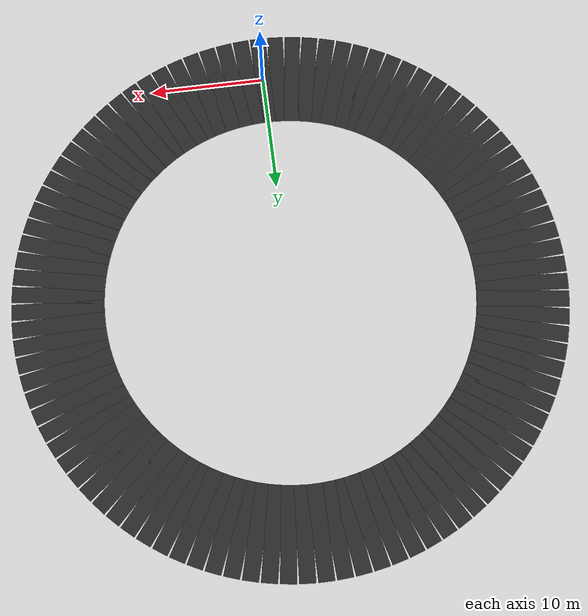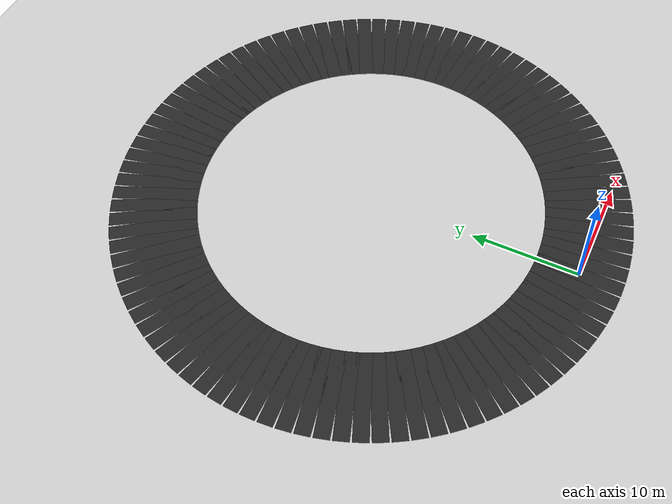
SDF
<sdf version="1.6">
 <world name="lane_world">
  <include><uri>model://sun</uri></include>
  <include><uri>model://ground_plane</uri></include>
  <model name="closed_loop_road">
   <static>true</static>
   <link name="road_link">
    <collision name="road_collision_0">
     <pose>0.000000 0.000000 0.01 0 0 0.000000</pose>
     <geometry><box><size>1.388763 8.00 0.02</size></box></geometry>
    </collision>
    <visual name="road_visual_0">
     <pose>0.000000 0.000000 0.01 0 0 0.000000</pose>
     <geometry><box><size>1.388763 8.00 0.02</size></box></geometry>
     <material><ambient>0.15 0.15 0.15 1</ambient><diffuse>0.15 0.15 0.15 1</diffuse></material>
    </visual>
    <collision name="road_collision_1">
     <pose>1.308063 0.042822 0.01 0 0 0.065450</pose>
     <geometry><box><size>1.388763 8.00 0.02</size></box></geometry>
    </collision>
    <visual name="road_visual_1">
     <pose>1.308063 0.042822 0.01 0 0 0.065450</pose>
     <geometry><box><size>1.388763 8.00 0.02</size></box></geometry>
     <material><ambient>0.15 0.15 0.15 1</ambient><diffuse>0.15 0.15 0.15 1</diffuse></material>
    </visual>
    <collision name="road_collision_2">
     <pose>2.610524 0.171103 0.01 0 0 0.130900</pose>
     <geometry><box><size>1.388763 8.00 0.02</size></box></geometry>
    </collision>
    <visual name="road_visual_2">
     <pose>2.610524 0.171103 0.01 0 0 0.130900</pose>
     <geometry><box><size>1.388763 8.00 0.02</size></box></geometry>
     <material><ambient>0.15 0.15 0.15 1</ambient><diffuse>0.15 0.15 0.15 1</diffuse></material>
    </visual>
    <collision name="road_collision_3">
     <pose>3.901806 0.384294 0.01 0 0 0.196350</pose>
     <geometry><box><size>1.388763 8.00 0.02</size></box></geometry>
    </collision>
    <visual name="road_visual_3">
     <pose>3.901806 0.384294 0.01 0 0 0.196350</pose>
     <geometry><box><size>1.388763 8.00 0.02</size></box></geometry>
     <material><ambient>0.15 0.15 0.15 1</ambient><diffuse>0.15 0.15 0.15 1</diffuse></material>
    </visual>
    <collision name="road_collision_4">
     <pose>5.176381 0.681483 0.01 0 0 0.261799</pose>
     <geometry><box><size>1.388763 8.00 0.02</size></box></geometry>
    </collision>
    <visual name="road_visual_4">
     <pose>5.176381 0.681483 0.01 0 0 0.261799</pose>
     <geometry><box><size>1.388763 8.00 0.02</size></box></geometry>
     <material><ambient>0.15 0.15 0.15 1</ambient><diffuse>0.15 0.15 0.15 1</diffuse></material>
    </visual>
    <collision name="road_collision_5">
     <pose>6.428789 1.061397 0.01 0 0 0.327249</pose>
     <geometry><box><size>1.388763 8.00 0.02</size></box></geometry>
    </collision>
    <visual name="road_visual_5">
     <pose>6.428789 1.061397 0.01 0 0 0.327249</pose>
     <geometry><box><size>1.388763 8.00 0.02</size></box></geometry>
     <material><ambient>0.15 0.15 0.15 1</ambient><diffuse>0.15 0.15 0.15 1</diffuse></material>
    </visual>
    <collision name="road_collision_6">
     <pose>7.653669 1.522409 0.01 0 0 0.392699</pose>
     <geometry><box><size>1.388763 8.00 0.02</size></box></geometry>
    </collision>
    <visual name="road_visual_6">
     <pose>7.653669 1.522409 0.01 0 0 0.392699</pose>
     <geometry><box><size>1.388763 8.00 0.02</size></box></geometry>
     <material><ambient>0.15 0.15 0.15 1</ambient><diffuse>0.15 0.15 0.15 1</diffuse></material>
    </visual>
    <collision name="road_collision_7">
     <pose>8.845774 2.062545 0.01 0 0 0.458149</pose>
     <geometry><box><size>1.388763 8.00 0.02</size></box></geometry>
    </collision>
    <visual name="road_visual_7">
     <pose>8.845774 2.062545 0.01 0 0 0.458149</pose>
     <geometry><box><size>1.388763 8.00 0.02</size></box></geometry>
     <material><ambient>0.15 0.15 0.15 1</ambient><diffuse>0.15 0.15 0.15 1</diffuse></material>
    </visual>
    <collision name="road_collision_8">
     <pose>10.000000 2.679492 0.01 0 0 0.523599</pose>
     <geometry><box><size>1.388763 8.00 0.02</size></box></geometry>
    </collision>
    <visual name="road_visual_8">
     <pose>10.000000 2.679492 0.01 0 0 0.523599</pose>
     <geometry><box><size>1.388763 8.00 0.02</size></box></geometry>
     <material><ambient>0.15 0.15 0.15 1</ambient><diffuse>0.15 0.15 0.15 1</diffuse></material>
    </visual>
    <collision name="road_collision_9">
     <pose>11.111405 3.370608 0.01 0 0 0.589049</pose>
     <geometry><box><size>1.388763 8.00 0.02</size></box></geometry>
    </collision>
    <visual name="road_visual_9">
     <pose>11.111405 3.370608 0.01 0 0 0.589049</pose>
     <geometry><box><size>1.388763 8.00 0.02</size></box></geometry>
     <material><ambient>0.15 0.15 0.15 1</ambient><diffuse>0.15 0.15 0.15 1</diffuse></material>
    </visual>
    <collision name="road_collision_10">
     <pose>12.175229 4.132933 0.01 0 0 0.654498</pose>
     <geometry><box><size>1.388763 8.00 0.02</size></box></geometry>
    </collision>
    <visual name="road_visual_10">
     <pose>12.175229 4.132933 0.01 0 0 0.654498</pose>
     <geometry><box><size>1.388763 8.00 0.02</size></box></geometry>
     <material><ambient>0.15 0.15 0.15 1</ambient><diffuse>0.15 0.15 0.15 1</diffuse></material>
    </visual>
    <collision name="road_collision_11">
     <pose>13.186916 4.963204 0.01 0 0 0.719948</pose>
     <geometry><box><size>1.388763 8.00 0.02</size></box></geometry>
    </collision>
    <visual name="road_visual_11">
     <pose>13.186916 4.963204 0.01 0 0 0.719948</pose>
     <geometry><box><size>1.388763 8.00 0.02</size></box></geometry>
     <material><ambient>0.15 0.15 0.15 1</ambient><diffuse>0.15 0.15 0.15 1</diffuse></material>
    </visual>
    <collision name="road_collision_12">
     <pose>14.142136 5.857864 0.01 0 0 0.785398</pose>
     <geometry><box><size>1.388763 8.00 0.02</size></box></geometry>
    </collision>
    <visual name="road_visual_12">
     <pose>14.142136 5.857864 0.01 0 0 0.785398</pose>
     <geometry><box><size>1.388763 8.00 0.02</size></box></geometry>
     <material><ambient>0.15 0.15 0.15 1</ambient><diffuse>0.15 0.15 0.15 1</diffuse></material>
    </visual>
    <collision name="road_collision_13">
     <pose>15.036796 6.813084 0.01 0 0 0.850848</pose>
     <geometry><box><size>1.388763 8.00 0.02</size></box></geometry>
    </collision>
    <visual name="road_visual_13">
     <pose>15.036796 6.813084 0.01 0 0 0.850848</pose>
     <geometry><box><size>1.388763 8.00 0.02</size></box></geometry>
     <material><ambient>0.15 0.15 0.15 1</ambient><diffuse>0.15 0.15 0.15 1</diffuse></material>
    </visual>
    <collision name="road_collision_14">
     <pose>15.867067 7.824771 0.01 0 0 0.916298</pose>
     <geometry><box><size>1.388763 8.00 0.02</size></box></geometry>
    </collision>
    <visual name="road_visual_14">
     <pose>15.867067 7.824771 0.01 0 0 0.916298</pose>
     <geometry><box><size>1.388763 8.00 0.02</size></box></geometry>
     <material><ambient>0.15 0.15 0.15 1</ambient><diffuse>0.15 0.15 0.15 1</diffuse></material>
    </visual>
    <collision name="road_collision_15">
     <pose>16.629392 8.888595 0.01 0 0 0.981748</pose>
     <geometry><box><size>1.388763 8.00 0.02</size></box></geometry>
    </collision>
    <visual name="road_visual_15">
     <pose>16.629392 8.888595 0.01 0 0 0.981748</pose>
     <geometry><box><size>1.388763 8.00 0.02</size></box></geometry>
     <material><ambient>0.15 0.15 0.15 1</ambient><diffuse>0.15 0.15 0.15 1</diffuse></material>
    </visual>
    <collision name="road_collision_16">
     <pose>17.320508 10.000000 0.01 0 0 1.047198</pose>
     <geometry><box><size>1.388763 8.00 0.02</size></box></geometry>
    </collision>
    <visual name="road_visual_16">
     <pose>17.320508 10.000000 0.01 0 0 1.047198</pose>
     <geometry><box><size>1.388763 8.00 0.02</size></box></geometry>
     <material><ambient>0.15 0.15 0.15 1</ambient><diffuse>0.15 0.15 0.15 1</diffuse></material>
    </visual>
    <collision name="road_collision_17">
     <pose>17.937455 11.154226 0.01 0 0 1.112647</pose>
     <geometry><box><size>1.388763 8.00 0.02</size></box></geometry>
    </collision>
    <visual name="road_visual_17">
     <pose>17.937455 11.154226 0.01 0 0 1.112647</pose>
     <geometry><box><size>1.388763 8.00 0.02</size></box></geometry>
     <material><ambient>0.15 0.15 0.15 1</ambient><diffuse>0.15 0.15 0.15 1</diffuse></material>
    </visual>
    <collision name="road_collision_18">
     <pose>18.477591 12.346331 0.01 0 0 1.178097</pose>
     <geometry><box><size>1.388763 8.00 0.02</size></box></geometry>
    </collision>
    <visual name="road_visual_18">
     <pose>18.477591 12.346331 0.01 0 0 1.178097</pose>
     <geometry><box><size>1.388763 8.00 0.02</size></box></geometry>
     <material><ambient>0.15 0.15 0.15 1</ambient><diffuse>0.15 0.15 0.15 1</diffuse></material>
    </visual>
    <collision name="road_collision_19">
     <pose>18.938603 13.571211 0.01 0 0 1.243547</pose>
     <geometry><box><size>1.388763 8.00 0.02</size></box></geometry>
    </collision>
    <visual name="road_visual_19">
     <pose>18.938603 13.571211 0.01 0 0 1.243547</pose>
     <geometry><box><size>1.388763 8.00 0.02</size></box></geometry>
     <material><ambient>0.15 0.15 0.15 1</ambient><diffuse>0.15 0.15 0.15 1</diffuse></material>
    </visual>
    <collision name="road_collision_20">
     <pose>19.318517 14.823619 0.01 0 0 1.308997</pose>
     <geometry><box><size>1.388763 8.00 0.02</size></box></geometry>
    </collision>
    <visual name="road_visual_20">
     <pose>19.318517 14.823619 0.01 0 0 1.308997</pose>
     <geometry><box><size>1.388763 8.00 0.02</size></box></geometry>
     <material><ambient>0.15 0.15 0.15 1</ambient><diffuse>0.15 0.15 0.15 1</diffuse></material>
    </visual>
    <collision name="road_collision_21">
     <pose>19.615706 16.098194 0.01 0 0 1.374447</pose>
     <geometry><box><size>1.388763 8.00 0.02</size></box></geometry>
    </collision>
    <visual name="road_visual_21">
     <pose>19.615706 16.098194 0.01 0 0 1.374447</pose>
     <geometry><box><size>1.388763 8.00 0.02</size></box></geometry>
     <material><ambient>0.15 0.15 0.15 1</ambient><diffuse>0.15 0.15 0.15 1</diffuse></material>
    </visual>
    <collision name="road_collision_22">
     <pose>19.828897 17.389476 0.01 0 0 1.439897</pose>
     <geometry><box><size>1.388763 8.00 0.02</size></box></geometry>
    </collision>
    <visual name="road_visual_22">
     <pose>19.828897 17.389476 0.01 0 0 1.439897</pose>
     <geometry><box><size>1.388763 8.00 0.02</size></box></geometry>
     <material><ambient>0.15 0.15 0.15 1</ambient><diffuse>0.15 0.15 0.15 1</diffuse></material>
    </visual>
    <collision name="road_collision_23">
     <pose>19.957178 18.691937 0.01 0 0 1.505346</pose>
     <geometry><box><size>1.388763 8.00 0.02</size></box></geometry>
    </collision>
    <visual name="road_visual_23">
     <pose>19.957178 18.691937 0.01 0 0 1.505346</pose>
     <geometry><box><size>1.388763 8.00 0.02</size></box></geometry>
     <material><ambient>0.15 0.15 0.15 1</ambient><diffuse>0.15 0.15 0.15 1</diffuse></material>
    </visual>
    <collision name="road_collision_24">
     <pose>20.000000 20.000000 0.01 0 0 1.570796</pose>
     <geometry><box><size>1.388763 8.00 0.02</size></box></geometry>
    </collision>
    <visual name="road_visual_24">
     <pose>20.000000 20.000000 0.01 0 0 1.570796</pose>
     <geometry><box><size>1.388763 8.00 0.02</size></box></geometry>
     <material><ambient>0.15 0.15 0.15 1</ambient><diffuse>0.15 0.15 0.15 1</diffuse></material>
    </visual>
    <collision name="road_collision_25">
     <pose>19.957178 21.308063 0.01 0 0 1.636246</pose>
     <geometry><box><size>1.388763 8.00 0.02</size></box></geometry>
    </collision>
    <visual name="road_visual_25">
     <pose>19.957178 21.308063 0.01 0 0 1.636246</pose>
     <geometry><box><size>1.388763 8.00 0.02</size></box></geometry>
     <material><ambient>0.15 0.15 0.15 1</ambient><diffuse>0.15 0.15 0.15 1</diffuse></material>
    </visual>
    <collision name="road_collision_26">
     <pose>19.828897 22.610524 0.01 0 0 1.701696</pose>
     <geometry><box><size>1.388763 8.00 0.02</size></box></geometry>
    </collision>
    <visual name="road_visual_26">
     <pose>19.828897 22.610524 0.01 0 0 1.701696</pose>
     <geometry><box><size>1.388763 8.00 0.02</size></box></geometry>
     <material><ambient>0.15 0.15 0.15 1</ambient><diffuse>0.15 0.15 0.15 1</diffuse></material>
    </visual>
    <collision name="road_collision_27">
     <pose>19.615706 23.901806 0.01 0 0 1.767146</pose>
     <geometry><box><size>1.388763 8.00 0.02</size></box></geometry>
    </collision>
    <visual name="road_visual_27">
     <pose>19.615706 23.901806 0.01 0 0 1.767146</pose>
     <geometry><box><size>1.388763 8.00 0.02</size></box></geometry>
     <material><ambient>0.15 0.15 0.15 1</ambient><diffuse>0.15 0.15 0.15 1</diffuse></material>
    </visual>
    <collision name="road_collision_28">
     <pose>19.318517 25.176381 0.01 0 0 1.832596</pose>
     <geometry><box><size>1.388763 8.00 0.02</size></box></geometry>
    </collision>
    <visual name="road_visual_28">
     <pose>19.318517 25.176381 0.01 0 0 1.832596</pose>
     <geometry><box><size>1.388763 8.00 0.02</size></box></geometry>
     <material><ambient>0.15 0.15 0.15 1</ambient><diffuse>0.15 0.15 0.15 1</diffuse></material>
    </visual>
    <collision name="road_collision_29">
     <pose>18.938603 26.428789 0.01 0 0 1.898046</pose>
     <geometry><box><size>1.388763 8.00 0.02</size></box></geometry>
    </collision>
    <visual name="road_visual_29">
     <pose>18.938603 26.428789 0.01 0 0 1.898046</pose>
     <geometry><box><size>1.388763 8.00 0.02</size></box></geometry>
     <material><ambient>0.15 0.15 0.15 1</ambient><diffuse>0.15 0.15 0.15 1</diffuse></material>
    </visual>
    <collision name="road_collision_30">
     <pose>18.477591 27.653669 0.01 0 0 1.963495</pose>
     <geometry><box><size>1.388763 8.00 0.02</size></box></geometry>
    </collision>
    <visual name="road_visual_30">
     <pose>18.477591 27.653669 0.01 0 0 1.963495</pose>
     <geometry><box><size>1.388763 8.00 0.02</size></box></geometry>
     <material><ambient>0.15 0.15 0.15 1</ambient><diffuse>0.15 0.15 0.15 1</diffuse></material>
    </visual>
    <collision name="road_collision_31">
     <pose>17.937455 28.845774 0.01 0 0 2.028945</pose>
     <geometry><box><size>1.388763 8.00 0.02</size></box></geometry>
    </collision>
    <visual name="road_visual_31">
     <pose>17.937455 28.845774 0.01 0 0 2.028945</pose>
     <geometry><box><size>1.388763 8.00 0.02</size></box></geometry>
     <material><ambient>0.15 0.15 0.15 1</ambient><diffuse>0.15 0.15 0.15 1</diffuse></material>
    </visual>
    <collision name="road_collision_32">
     <pose>17.320508 30.000000 0.01 0 0 2.094395</pose>
     <geometry><box><size>1.388763 8.00 0.02</size></box></geometry>
    </collision>
    <visual name="road_visual_32">
     <pose>17.320508 30.000000 0.01 0 0 2.094395</pose>
     <geometry><box><size>1.388763 8.00 0.02</size></box></geometry>
     <material><ambient>0.15 0.15 0.15 1</ambient><diffuse>0.15 0.15 0.15 1</diffuse></material>
    </visual>
    <collision name="road_collision_33">
     <pose>16.629392 31.111405 0.01 0 0 2.159845</pose>
     <geometry><box><size>1.388763 8.00 0.02</size></box></geometry>
    </collision>
    <visual name="road_visual_33">
     <pose>16.629392 31.111405 0.01 0 0 2.159845</pose>
     <geometry><box><size>1.388763 8.00 0.02</size></box></geometry>
     <material><ambient>0.15 0.15 0.15 1</ambient><diffuse>0.15 0.15 0.15 1</diffuse></material>
    </visual>
    <collision name="road_collision_34">
     <pose>15.867067 32.175229 0.01 0 0 2.225295</pose>
     <geometry><box><size>1.388763 8.00 0.02</size></box></geometry>
    </collision>
    <visual name="road_visual_34">
     <pose>15.867067 32.175229 0.01 0 0 2.225295</pose>
     <geometry><box><size>1.388763 8.00 0.02</size></box></geometry>
     <material><ambient>0.15 0.15 0.15 1</ambient><diffuse>0.15 0.15 0.15 1</diffuse></material>
    </visual>
    <collision name="road_collision_35">
     <pose>15.036796 33.186916 0.01 0 0 2.290745</pose>
     <geometry><box><size>1.388763 8.00 0.02</size></box></geometry>
    </collision>
    <visual name="road_visual_35">
     <pose>15.036796 33.186916 0.01 0 0 2.290745</pose>
     <geometry><box><size>1.388763 8.00 0.02</size></box></geometry>
     <material><ambient>0.15 0.15 0.15 1</ambient><diffuse>0.15 0.15 0.15 1</diffuse></material>
    </visual>
    <collision name="road_collision_36">
     <pose>14.142136 34.142136 0.01 0 0 2.356194</pose>
     <geometry><box><size>1.388763 8.00 0.02</size></box></geometry>
    </collision>
    <visual name="road_visual_36">
     <pose>14.142136 34.142136 0.01 0 0 2.356194</pose>
     <geometry><box><size>1.388763 8.00 0.02</size></box></geometry>
     <material><ambient>0.15 0.15 0.15 1</ambient><diffuse>0.15 0.15 0.15 1</diffuse></material>
    </visual>
    <collision name="road_collision_37">
     <pose>13.186916 35.036796 0.01 0 0 2.421644</pose>
     <geometry><box><size>1.388763 8.00 0.02</size></box></geometry>
    </collision>
    <visual name="road_visual_37">
     <pose>13.186916 35.036796 0.01 0 0 2.421644</pose>
     <geometry><box><size>1.388763 8.00 0.02</size></box></geometry>
     <material><ambient>0.15 0.15 0.15 1</ambient><diffuse>0.15 0.15 0.15 1</diffuse></material>
    </visual>
    <collision name="road_collision_38">
     <pose>12.175229 35.867067 0.01 0 0 2.487094</pose>
     <geometry><box><size>1.388763 8.00 0.02</size></box></geometry>
    </collision>
    <visual name="road_visual_38">
     <pose>12.175229 35.867067 0.01 0 0 2.487094</pose>
     <geometry><box><size>1.388763 8.00 0.02</size></box></geometry>
     <material><ambient>0.15 0.15 0.15 1</ambient><diffuse>0.15 0.15 0.15 1</diffuse></material>
    </visual>
    <collision name="road_collision_39">
     <pose>11.111405 36.629392 0.01 0 0 2.552544</pose>
     <geometry><box><size>1.388763 8.00 0.02</size></box></geometry>
    </collision>
    <visual name="road_visual_39">
     <pose>11.111405 36.629392 0.01 0 0 2.552544</pose>
     <geometry><box><size>1.388763 8.00 0.02</size></box></geometry>
     <material><ambient>0.15 0.15 0.15 1</ambient><diffuse>0.15 0.15 0.15 1</diffuse></material>
    </visual>
    <collision name="road_collision_40">
     <pose>10.000000 37.320508 0.01 0 0 2.617994</pose>
     <geometry><box><size>1.388763 8.00 0.02</size></box></geometry>
    </collision>
    <visual name="road_visual_40">
     <pose>10.000000 37.320508 0.01 0 0 2.617994</pose>
     <geometry><box><size>1.388763 8.00 0.02</size></box></geometry>
     <material><ambient>0.15 0.15 0.15 1</ambient><diffuse>0.15 0.15 0.15 1</diffuse></material>
    </visual>
    <collision name="road_collision_41">
     <pose>8.845774 37.937455 0.01 0 0 2.683444</pose>
     <geometry><box><size>1.388763 8.00 0.02</size></box></geometry>
    </collision>
    <visual name="road_visual_41">
     <pose>8.845774 37.937455 0.01 0 0 2.683444</pose>
     <geometry><box><size>1.388763 8.00 0.02</size></box></geometry>
     <material><ambient>0.15 0.15 0.15 1</ambient><diffuse>0.15 0.15 0.15 1</diffuse></material>
    </visual>
    <collision name="road_collision_42">
     <pose>7.653669 38.477591 0.01 0 0 2.748894</pose>
     <geometry><box><size>1.388763 8.00 0.02</size></box></geometry>
    </collision>
    <visual name="road_visual_42">
     <pose>7.653669 38.477591 0.01 0 0 2.748894</pose>
     <geometry><box><size>1.388763 8.00 0.02</size></box></geometry>
     <material><ambient>0.15 0.15 0.15 1</ambient><diffuse>0.15 0.15 0.15 1</diffuse></material>
    </visual>
    <collision name="road_collision_43">
     <pose>6.428789 38.938603 0.01 0 0 2.814343</pose>
     <geometry><box><size>1.388763 8.00 0.02</size></box></geometry>
    </collision>
    <visual name="road_visual_43">
     <pose>6.428789 38.938603 0.01 0 0 2.814343</pose>
     <geometry><box><size>1.388763 8.00 0.02</size></box></geometry>
     <material><ambient>0.15 0.15 0.15 1</ambient><diffuse>0.15 0.15 0.15 1</diffuse></material>
    </visual>
    <collision name="road_collision_44">
     <pose>5.176381 39.318517 0.01 0 0 2.879793</pose>
     <geometry><box><size>1.388763 8.00 0.02</size></box></geometry>
    </collision>
    <visual name="road_visual_44">
     <pose>5.176381 39.318517 0.01 0 0 2.879793</pose>
     <geometry><box><size>1.388763 8.00 0.02</size></box></geometry>
     <material><ambient>0.15 0.15 0.15 1</ambient><diffuse>0.15 0.15 0.15 1</diffuse></material>
    </visual>
    <collision name="road_collision_45">
     <pose>3.901806 39.615706 0.01 0 0 2.945243</pose>
     <geometry><box><size>1.388763 8.00 0.02</size></box></geometry>
    </collision>
    <visual name="road_visual_45">
     <pose>3.901806 39.615706 0.01 0 0 2.945243</pose>
     <geometry><box><size>1.388763 8.00 0.02</size></box></geometry>
     <material><ambient>0.15 0.15 0.15 1</ambient><diffuse>0.15 0.15 0.15 1</diffuse></material>
    </visual>
    <collision name="road_collision_46">
     <pose>2.610524 39.828897 0.01 0 0 3.010693</pose>
     <geometry><box><size>1.388763 8.00 0.02</size></box></geometry>
    </collision>
    <visual name="road_visual_46">
     <pose>2.610524 39.828897 0.01 0 0 3.010693</pose>
     <geometry><box><size>1.388763 8.00 0.02</size></box></geometry>
     <material><ambient>0.15 0.15 0.15 1</ambient><diffuse>0.15 0.15 0.15 1</diffuse></material>
    </visual>
    <collision name="road_collision_47">
     <pose>1.308063 39.957178 0.01 0 0 3.076143</pose>
     <geometry><box><size>1.388763 8.00 0.02</size></box></geometry>
    </collision>
    <visual name="road_visual_47">
     <pose>1.308063 39.957178 0.01 0 0 3.076143</pose>
     <geometry><box><size>1.388763 8.00 0.02</size></box></geometry>
     <material><ambient>0.15 0.15 0.15 1</ambient><diffuse>0.15 0.15 0.15 1</diffuse></material>
    </visual>
    <collision name="road_collision_48">
     <pose>0.000000 40.000000 0.01 0 0 3.141593</pose>
     <geometry><box><size>1.388763 8.00 0.02</size></box></geometry>
    </collision>
    <visual name="road_visual_48">
     <pose>0.000000 40.000000 0.01 0 0 3.141593</pose>
     <geometry><box><size>1.388763 8.00 0.02</size></box></geometry>
     <material><ambient>0.15 0.15 0.15 1</ambient><diffuse>0.15 0.15 0.15 1</diffuse></material>
    </visual>
    <collision name="road_collision_49">
     <pose>-1.308063 39.957178 0.01 0 0 3.207043</pose>
     <geometry><box><size>1.388763 8.00 0.02</size></box></geometry>
    </collision>
    <visual name="road_visual_49">
     <pose>-1.308063 39.957178 0.01 0 0 3.207043</pose>
     <geometry><box><size>1.388763 8.00 0.02</size></box></geometry>
     <material><ambient>0.15 0.15 0.15 1</ambient><diffuse>0.15 0.15 0.15 1</diffuse></material>
    </visual>
    <collision name="road_collision_50">
     <pose>-2.610524 39.828897 0.01 0 0 3.272492</pose>
     <geometry><box><size>1.388763 8.00 0.02</size></box></geometry>
    </collision>
    <visual name="road_visual_50">
     <pose>-2.610524 39.828897 0.01 0 0 3.272492</pose>
     <geometry><box><size>1.388763 8.00 0.02</size></box></geometry>
     <material><ambient>0.15 0.15 0.15 1</ambient><diffuse>0.15 0.15 0.15 1</diffuse></material>
    </visual>
    <collision name="road_collision_51">
     <pose>-3.901806 39.615706 0.01 0 0 3.337942</pose>
     <geometry><box><size>1.388763 8.00 0.02</size></box></geometry>
    </collision>
    <visual name="road_visual_51">
     <pose>-3.901806 39.615706 0.01 0 0 3.337942</pose>
     <geometry><box><size>1.388763 8.00 0.02</size></box></geometry>
     <material><ambient>0.15 0.15 0.15 1</ambient><diffuse>0.15 0.15 0.15 1</diffuse></material>
    </visual>
    <collision name="road_collision_52">
     <pose>-5.176381 39.318517 0.01 0 0 3.403392</pose>
     <geometry><box><size>1.388763 8.00 0.02</size></box></geometry>
    </collision>
    <visual name="road_visual_52">
     <pose>-5.176381 39.318517 0.01 0 0 3.403392</pose>
     <geometry><box><size>1.388763 8.00 0.02</size></box></geometry>
     <material><ambient>0.15 0.15 0.15 1</ambient><diffuse>0.15 0.15 0.15 1</diffuse></material>
    </visual>
    <collision name="road_collision_53">
     <pose>-6.428789 38.938603 0.01 0 0 3.468842</pose>
     <geometry><box><size>1.388763 8.00 0.02</size></box></geometry>
    </collision>
    <visual name="road_visual_53">
     <pose>-6.428789 38.938603 0.01 0 0 3.468842</pose>
     <geometry><box><size>1.388763 8.00 0.02</size></box></geometry>
     <material><ambient>0.15 0.15 0.15 1</ambient><diffuse>0.15 0.15 0.15 1</diffuse></material>
    </visual>
    <collision name="road_collision_54">
     <pose>-7.653669 38.477591 0.01 0 0 3.534292</pose>
     <geometry><box><size>1.388763 8.00 0.02</size></box></geometry>
    </collision>
    <visual name="road_visual_54">
     <pose>-7.653669 38.477591 0.01 0 0 3.534292</pose>
     <geometry><box><size>1.388763 8.00 0.02</size></box></geometry>
     <material><ambient>0.15 0.15 0.15 1</ambient><diffuse>0.15 0.15 0.15 1</diffuse></material>
    </visual>
    <collision name="road_collision_55">
     <pose>-8.845774 37.937455 0.01 0 0 3.599742</pose>
     <geometry><box><size>1.388763 8.00 0.02</size></box></geometry>
    </collision>
    <visual name="road_visual_55">
     <pose>-8.845774 37.937455 0.01 0 0 3.599742</pose>
     <geometry><box><size>1.388763 8.00 0.02</size></box></geometry>
     <material><ambient>0.15 0.15 0.15 1</ambient><diffuse>0.15 0.15 0.15 1</diffuse></material>
    </visual>
    <collision name="road_collision_56">
     <pose>-10.000000 37.320508 0.01 0 0 3.665191</pose>
     <geometry><box><size>1.388763 8.00 0.02</size></box></geometry>
    </collision>
    <visual name="road_visual_56">
     <pose>-10.000000 37.320508 0.01 0 0 3.665191</pose>
     <geometry><box><size>1.388763 8.00 0.02</size></box></geometry>
     <material><ambient>0.15 0.15 0.15 1</ambient><diffuse>0.15 0.15 0.15 1</diffuse></material>
    </visual>
    <collision name="road_collision_57">
     <pose>-11.111405 36.629392 0.01 0 0 3.730641</pose>
     <geometry><box><size>1.388763 8.00 0.02</size></box></geometry>
    </collision>
    <visual name="road_visual_57">
     <pose>-11.111405 36.629392 0.01 0 0 3.730641</pose>
     <geometry><box><size>1.388763 8.00 0.02</size></box></geometry>
     <material><ambient>0.15 0.15 0.15 1</ambient><diffuse>0.15 0.15 0.15 1</diffuse></material>
    </visual>
    <collision name="road_collision_58">
     <pose>-12.175229 35.867067 0.01 0 0 3.796091</pose>
     <geometry><box><size>1.388763 8.00 0.02</size></box></geometry>
    </collision>
    <visual name="road_visual_58">
     <pose>-12.175229 35.867067 0.01 0 0 3.796091</pose>
     <geometry><box><size>1.388763 8.00 0.02</size></box></geometry>
     <material><ambient>0.15 0.15 0.15 1</ambient><diffuse>0.15 0.15 0.15 1</diffuse></material>
    </visual>
    <collision name="road_collision_59">
     <pose>-13.186916 35.036796 0.01 0 0 3.861541</pose>
     <geometry><box><size>1.388763 8.00 0.02</size></box></geometry>
    </collision>
    <visual name="road_visual_59">
     <pose>-13.186916 35.036796 0.01 0 0 3.861541</pose>
     <geometry><box><size>1.388763 8.00 0.02</size></box></geometry>
     <material><ambient>0.15 0.15 0.15 1</ambient><diffuse>0.15 0.15 0.15 1</diffuse></material>
    </visual>
    <collision name="road_collision_60">
     <pose>-14.142136 34.142136 0.01 0 0 3.926991</pose>
     <geometry><box><size>1.388763 8.00 0.02</size></box></geometry>
    </collision>
    <visual name="road_visual_60">
     <pose>-14.142136 34.142136 0.01 0 0 3.926991</pose>
     <geometry><box><size>1.388763 8.00 0.02</size></box></geometry>
     <material><ambient>0.15 0.15 0.15 1</ambient><diffuse>0.15 0.15 0.15 1</diffuse></material>
    </visual>
    <collision name="road_collision_61">
     <pose>-15.036796 33.186916 0.01 0 0 3.992441</pose>
     <geometry><box><size>1.388763 8.00 0.02</size></box></geometry>
    </collision>
    <visual name="road_visual_61">
     <pose>-15.036796 33.186916 0.01 0 0 3.992441</pose>
     <geometry><box><size>1.388763 8.00 0.02</size></box></geometry>
     <material><ambient>0.15 0.15 0.15 1</ambient><diffuse>0.15 0.15 0.15 1</diffuse></material>
    </visual>
    <collision name="road_collision_62">
     <pose>-15.867067 32.175229 0.01 0 0 4.057891</pose>
     <geometry><box><size>1.388763 8.00 0.02</size></box></geometry>
    </collision>
    <visual name="road_visual_62">
     <pose>-15.867067 32.175229 0.01 0 0 4.057891</pose>
     <geometry><box><size>1.388763 8.00 0.02</size></box></geometry>
     <material><ambient>0.15 0.15 0.15 1</ambient><diffuse>0.15 0.15 0.15 1</diffuse></material>
    </visual>
    <collision name="road_collision_63">
     <pose>-16.629392 31.111405 0.01 0 0 4.123340</pose>
     <geometry><box><size>1.388763 8.00 0.02</size></box></geometry>
    </collision>
    <visual name="road_visual_63">
     <pose>-16.629392 31.111405 0.01 0 0 4.123340</pose>
     <geometry><box><size>1.388763 8.00 0.02</size></box></geometry>
     <material><ambient>0.15 0.15 0.15 1</ambient><diffuse>0.15 0.15 0.15 1</diffuse></material>
    </visual>
    <collision name="road_collision_64">
     <pose>-17.320508 30.000000 0.01 0 0 4.188790</pose>
     <geometry><box><size>1.388763 8.00 0.02</size></box></geometry>
    </collision>
    <visual name="road_visual_64">
     <pose>-17.320508 30.000000 0.01 0 0 4.188790</pose>
     <geometry><box><size>1.388763 8.00 0.02</size></box></geometry>
     <material><ambient>0.15 0.15 0.15 1</ambient><diffuse>0.15 0.15 0.15 1</diffuse></material>
    </visual>
    <collision name="road_collision_65">
     <pose>-17.937455 28.845774 0.01 0 0 4.254240</pose>
     <geometry><box><size>1.388763 8.00 0.02</size></box></geometry>
    </collision>
    <visual name="road_visual_65">
     <pose>-17.937455 28.845774 0.01 0 0 4.254240</pose>
     <geometry><box><size>1.388763 8.00 0.02</size></box></geometry>
     <material><ambient>0.15 0.15 0.15 1</ambient><diffuse>0.15 0.15 0.15 1</diffuse></material>
    </visual>
    <collision name="road_collision_66">
     <pose>-18.477591 27.653669 0.01 0 0 4.319690</pose>
     <geometry><box><size>1.388763 8.00 0.02</size></box></geometry>
    </collision>
    <visual name="road_visual_66">
     <pose>-18.477591 27.653669 0.01 0 0 4.319690</pose>
     <geometry><box><size>1.388763 8.00 0.02</size></box></geometry>
     <material><ambient>0.15 0.15 0.15 1</ambient><diffuse>0.15 0.15 0.15 1</diffuse></material>
    </visual>
    <collision name="road_collision_67">
     <pose>-18.938603 26.428789 0.01 0 0 4.385140</pose>
     <geometry><box><size>1.388763 8.00 0.02</size></box></geometry>
    </collision>
    <visual name="road_visual_67">
     <pose>-18.938603 26.428789 0.01 0 0 4.385140</pose>
     <geometry><box><size>1.388763 8.00 0.02</size></box></geometry>
     <material><ambient>0.15 0.15 0.15 1</ambient><diffuse>0.15 0.15 0.15 1</diffuse></material>
    </visual>
    <collision name="road_collision_68">
     <pose>-19.318517 25.176381 0.01 0 0 4.450590</pose>
     <geometry><box><size>1.388763 8.00 0.02</size></box></geometry>
    </collision>
    <visual name="road_visual_68">
     <pose>-19.318517 25.176381 0.01 0 0 4.450590</pose>
     <geometry><box><size>1.388763 8.00 0.02</size></box></geometry>
     <material><ambient>0.15 0.15 0.15 1</ambient><diffuse>0.15 0.15 0.15 1</diffuse></material>
    </visual>
    <collision name="road_collision_69">
     <pose>-19.615706 23.901806 0.01 0 0 4.516039</pose>
     <geometry><box><size>1.388763 8.00 0.02</size></box></geometry>
    </collision>
    <visual name="road_visual_69">
     <pose>-19.615706 23.901806 0.01 0 0 4.516039</pose>
     <geometry><box><size>1.388763 8.00 0.02</size></box></geometry>
     <material><ambient>0.15 0.15 0.15 1</ambient><diffuse>0.15 0.15 0.15 1</diffuse></material>
    </visual>
    <collision name="road_collision_70">
     <pose>-19.828897 22.610524 0.01 0 0 4.581489</pose>
     <geometry><box><size>1.388763 8.00 0.02</size></box></geometry>
    </collision>
    <visual name="road_visual_70">
     <pose>-19.828897 22.610524 0.01 0 0 4.581489</pose>
     <geometry><box><size>1.388763 8.00 0.02</size></box></geometry>
     <material><ambient>0.15 0.15 0.15 1</ambient><diffuse>0.15 0.15 0.15 1</diffuse></material>
    </visual>
    <collision name="road_collision_71">
     <pose>-19.957178 21.308063 0.01 0 0 4.646939</pose>
     <geometry><box><size>1.388763 8.00 0.02</size></box></geometry>
    </collision>
    <visual name="road_visual_71">
     <pose>-19.957178 21.308063 0.01 0 0 4.646939</pose>
     <geometry><box><size>1.388763 8.00 0.02</size></box></geometry>
     <material><ambient>0.15 0.15 0.15 1</ambient><diffuse>0.15 0.15 0.15 1</diffuse></material>
    </visual>
    <collision name="road_collision_72">
     <pose>-20.000000 20.000000 0.01 0 0 4.712389</pose>
     <geometry><box><size>1.388763 8.00 0.02</size></box></geometry>
    </collision>
    <visual name="road_visual_72">
     <pose>-20.000000 20.000000 0.01 0 0 4.712389</pose>
     <geometry><box><size>1.388763 8.00 0.02</size></box></geometry>
     <material><ambient>0.15 0.15 0.15 1</ambient><diffuse>0.15 0.15 0.15 1</diffuse></material>
    </visual>
    <collision name="road_collision_73">
     <pose>-19.957178 18.691937 0.01 0 0 4.777839</pose>
     <geometry><box><size>1.388763 8.00 0.02</size></box></geometry>
    </collision>
    <visual name="road_visual_73">
     <pose>-19.957178 18.691937 0.01 0 0 4.777839</pose>
     <geometry><box><size>1.388763 8.00 0.02</size></box></geometry>
     <material><ambient>0.15 0.15 0.15 1</ambient><diffuse>0.15 0.15 0.15 1</diffuse></material>
    </visual>
    <collision name="road_collision_74">
     <pose>-19.828897 17.389476 0.01 0 0 4.843289</pose>
     <geometry><box><size>1.388763 8.00 0.02</size></box></geometry>
    </collision>
    <visual name="road_visual_74">
     <pose>-19.828897 17.389476 0.01 0 0 4.843289</pose>
     <geometry><box><size>1.388763 8.00 0.02</size></box></geometry>
     <material><ambient>0.15 0.15 0.15 1</ambient><diffuse>0.15 0.15 0.15 1</diffuse></material>
    </visual>
    <collision name="road_collision_75">
     <pose>-19.615706 16.098194 0.01 0 0 4.908739</pose>
     <geometry><box><size>1.388763 8.00 0.02</size></box></geometry>
    </collision>
    <visual name="road_visual_75">
     <pose>-19.615706 16.098194 0.01 0 0 4.908739</pose>
     <geometry><box><size>1.388763 8.00 0.02</size></box></geometry>
     <material><ambient>0.15 0.15 0.15 1</ambient><diffuse>0.15 0.15 0.15 1</diffuse></material>
    </visual>
    <collision name="road_collision_76">
     <pose>-19.318517 14.823619 0.01 0 0 4.974188</pose>
     <geometry><box><size>1.388763 8.00 0.02</size></box></geometry>
    </collision>
    <visual name="road_visual_76">
     <pose>-19.318517 14.823619 0.01 0 0 4.974188</pose>
     <geometry><box><size>1.388763 8.00 0.02</size></box></geometry>
     <material><ambient>0.15 0.15 0.15 1</ambient><diffuse>0.15 0.15 0.15 1</diffuse></material>
    </visual>
    <collision name="road_collision_77">
     <pose>-18.938603 13.571211 0.01 0 0 5.039638</pose>
     <geometry><box><size>1.388763 8.00 0.02</size></box></geometry>
    </collision>
    <visual name="road_visual_77">
     <pose>-18.938603 13.571211 0.01 0 0 5.039638</pose>
     <geometry><box><size>1.388763 8.00 0.02</size></box></geometry>
     <material><ambient>0.15 0.15 0.15 1</ambient><diffuse>0.15 0.15 0.15 1</diffuse></material>
    </visual>
    <collision name="road_collision_78">
     <pose>-18.477591 12.346331 0.01 0 0 5.105088</pose>
     <geometry><box><size>1.388763 8.00 0.02</size></box></geometry>
    </collision>
    <visual name="road_visual_78">
     <pose>-18.477591 12.346331 0.01 0 0 5.105088</pose>
     <geometry><box><size>1.388763 8.00 0.02</size></box></geometry>
     <material><ambient>0.15 0.15 0.15 1</ambient><diffuse>0.15 0.15 0.15 1</diffuse></material>
    </visual>
    <collision name="road_collision_79">
     <pose>-17.937455 11.154226 0.01 0 0 5.170538</pose>
     <geometry><box><size>1.388763 8.00 0.02</size></box></geometry>
    </collision>
    <visual name="road_visual_79">
     <pose>-17.937455 11.154226 0.01 0 0 5.170538</pose>
     <geometry><box><size>1.388763 8.00 0.02</size></box></geometry>
     <material><ambient>0.15 0.15 0.15 1</ambient><diffuse>0.15 0.15 0.15 1</diffuse></material>
    </visual>
    <collision name="road_collision_80">
     <pose>-17.320508 10.000000 0.01 0 0 5.235988</pose>
     <geometry><box><size>1.388763 8.00 0.02</size></box></geometry>
    </collision>
    <visual name="road_visual_80">
     <pose>-17.320508 10.000000 0.01 0 0 5.235988</pose>
     <geometry><box><size>1.388763 8.00 0.02</size></box></geometry>
     <material><ambient>0.15 0.15 0.15 1</ambient><diffuse>0.15 0.15 0.15 1</diffuse></material>
    </visual>
    <collision name="road_collision_81">
     <pose>-16.629392 8.888595 0.01 0 0 5.301438</pose>
     <geometry><box><size>1.388763 8.00 0.02</size></box></geometry>
    </collision>
    <visual name="road_visual_81">
     <pose>-16.629392 8.888595 0.01 0 0 5.301438</pose>
     <geometry><box><size>1.388763 8.00 0.02</size></box></geometry>
     <material><ambient>0.15 0.15 0.15 1</ambient><diffuse>0.15 0.15 0.15 1</diffuse></material>
    </visual>
    <collision name="road_collision_82">
     <pose>-15.867067 7.824771 0.01 0 0 5.366887</pose>
     <geometry><box><size>1.388763 8.00 0.02</size></box></geometry>
    </collision>
    <visual name="road_visual_82">
     <pose>-15.867067 7.824771 0.01 0 0 5.366887</pose>
     <geometry><box><size>1.388763 8.00 0.02</size></box></geometry>
     <material><ambient>0.15 0.15 0.15 1</ambient><diffuse>0.15 0.15 0.15 1</diffuse></material>
    </visual>
    <collision name="road_collision_83">
     <pose>-15.036796 6.813084 0.01 0 0 5.432337</pose>
     <geometry><box><size>1.388763 8.00 0.02</size></box></geometry>
    </collision>
    <visual name="road_visual_83">
     <pose>-15.036796 6.813084 0.01 0 0 5.432337</pose>
     <geometry><box><size>1.388763 8.00 0.02</size></box></geometry>
     <material><ambient>0.15 0.15 0.15 1</ambient><diffuse>0.15 0.15 0.15 1</diffuse></material>
    </visual>
    <collision name="road_collision_84">
     <pose>-14.142136 5.857864 0.01 0 0 5.497787</pose>
     <geometry><box><size>1.388763 8.00 0.02</size></box></geometry>
    </collision>
    <visual name="road_visual_84">
     <pose>-14.142136 5.857864 0.01 0 0 5.497787</pose>
     <geometry><box><size>1.388763 8.00 0.02</size></box></geometry>
     <material><ambient>0.15 0.15 0.15 1</ambient><diffuse>0.15 0.15 0.15 1</diffuse></material>
    </visual>
    <collision name="road_collision_85">
     <pose>-13.186916 4.963204 0.01 0 0 5.563237</pose>
     <geometry><box><size>1.388763 8.00 0.02</size></box></geometry>
    </collision>
    <visual name="road_visual_85">
     <pose>-13.186916 4.963204 0.01 0 0 5.563237</pose>
     <geometry><box><size>1.388763 8.00 0.02</size></box></geometry>
     <material><ambient>0.15 0.15 0.15 1</ambient><diffuse>0.15 0.15 0.15 1</diffuse></material>
    </visual>
    <collision name="road_collision_86">
     <pose>-12.175229 4.132933 0.01 0 0 5.628687</pose>
     <geometry><box><size>1.388763 8.00 0.02</size></box></geometry>
    </collision>
    <visual name="road_visual_86">
     <pose>-12.175229 4.132933 0.01 0 0 5.628687</pose>
     <geometry><box><size>1.388763 8.00 0.02</size></box></geometry>
     <material><ambient>0.15 0.15 0.15 1</ambient><diffuse>0.15 0.15 0.15 1</diffuse></material>
    </visual>
    <collision name="road_collision_87">
     <pose>-11.111405 3.370608 0.01 0 0 5.694137</pose>
     <geometry><box><size>1.388763 8.00 0.02</size></box></geometry>
    </collision>
    <visual name="road_visual_87">
     <pose>-11.111405 3.370608 0.01 0 0 5.694137</pose>
     <geometry><box><size>1.388763 8.00 0.02</size></box></geometry>
     <material><ambient>0.15 0.15 0.15 1</ambient><diffuse>0.15 0.15 0.15 1</diffuse></material>
    </visual>
    <collision name="road_collision_88">
     <pose>-10.000000 2.679492 0.01 0 0 5.759587</pose>
     <geometry><box><size>1.388763 8.00 0.02</size></box></geometry>
    </collision>
    <visual name="road_visual_88">
     <pose>-10.000000 2.679492 0.01 0 0 5.759587</pose>
     <geometry><box><size>1.388763 8.00 0.02</size></box></geometry>
     <material><ambient>0.15 0.15 0.15 1</ambient><diffuse>0.15 0.15 0.15 1</diffuse></material>
    </visual>
    <collision name="road_collision_89">
     <pose>-8.845774 2.062545 0.01 0 0 5.825036</pose>
     <geometry><box><size>1.388763 8.00 0.02</size></box></geometry>
    </collision>
    <visual name="road_visual_89">
     <pose>-8.845774 2.062545 0.01 0 0 5.825036</pose>
     <geometry><box><size>1.388763 8.00 0.02</size></box></geometry>
     <material><ambient>0.15 0.15 0.15 1</ambient><diffuse>0.15 0.15 0.15 1</diffuse></material>
    </visual>
    <collision name="road_collision_90">
     <pose>-7.653669 1.522409 0.01 0 0 5.890486</pose>
     <geometry><box><size>1.388763 8.00 0.02</size></box></geometry>
    </collision>
    <visual name="road_visual_90">
     <pose>-7.653669 1.522409 0.01 0 0 5.890486</pose>
     <geometry><box><size>1.388763 8.00 0.02</size></box></geometry>
     <material><ambient>0.15 0.15 0.15 1</ambient><diffuse>0.15 0.15 0.15 1</diffuse></material>
    </visual>
    <collision name="road_collision_91">
     <pose>-6.428789 1.061397 0.01 0 0 5.955936</pose>
     <geometry><box><size>1.388763 8.00 0.02</size></box></geometry>
    </collision>
    <visual name="road_visual_91">
     <pose>-6.428789 1.061397 0.01 0 0 5.955936</pose>
     <geometry><box><size>1.388763 8.00 0.02</size></box></geometry>
     <material><ambient>0.15 0.15 0.15 1</ambient><diffuse>0.15 0.15 0.15 1</diffuse></material>
    </visual>
    <collision name="road_collision_92">
     <pose>-5.176381 0.681483 0.01 0 0 6.021386</pose>
     <geometry><box><size>1.388763 8.00 0.02</size></box></geometry>
    </collision>
    <visual name="road_visual_92">
     <pose>-5.176381 0.681483 0.01 0 0 6.021386</pose>
     <geometry><box><size>1.388763 8.00 0.02</size></box></geometry>
     <material><ambient>0.15 0.15 0.15 1</ambient><diffuse>0.15 0.15 0.15 1</diffuse></material>
    </visual>
    <collision name="road_collision_93">
     <pose>-3.901806 0.384294 0.01 0 0 6.086836</pose>
     <geometry><box><size>1.388763 8.00 0.02</size></box></geometry>
    </collision>
    <visual name="road_visual_93">
     <pose>-3.901806 0.384294 0.01 0 0 6.086836</pose>
     <geometry><box><size>1.388763 8.00 0.02</size></box></geometry>
     <material><ambient>0.15 0.15 0.15 1</ambient><diffuse>0.15 0.15 0.15 1</diffuse></material>
    </visual>
    <collision name="road_collision_94">
     <pose>-2.610524 0.171103 0.01 0 0 6.152286</pose>
     <geometry><box><size>1.388763 8.00 0.02</size></box></geometry>
    </collision>
    <visual name="road_visual_94">
     <pose>-2.610524 0.171103 0.01 0 0 6.152286</pose>
     <geometry><box><size>1.388763 8.00 0.02</size></box></geometry>
     <material><ambient>0.15 0.15 0.15 1</ambient><diffuse>0.15 0.15 0.15 1</diffuse></material>
    </visual>
    <collision name="road_collision_95">
     <pose>-1.308063 0.042822 0.01 0 0 6.217735</pose>
     <geometry><box><size>1.388763 8.00 0.02</size></box></geometry>
    </collision>
    <visual name="road_visual_95">
     <pose>-1.308063 0.042822 0.01 0 0 6.217735</pose>
     <geometry><box><size>1.388763 8.00 0.02</size></box></geometry>
     <material><ambient>0.15 0.15 0.15 1</ambient><diffuse>0.15 0.15 0.15 1</diffuse></material>
    </visual>
   </link>
  </model>
 </world>
</sdf>
